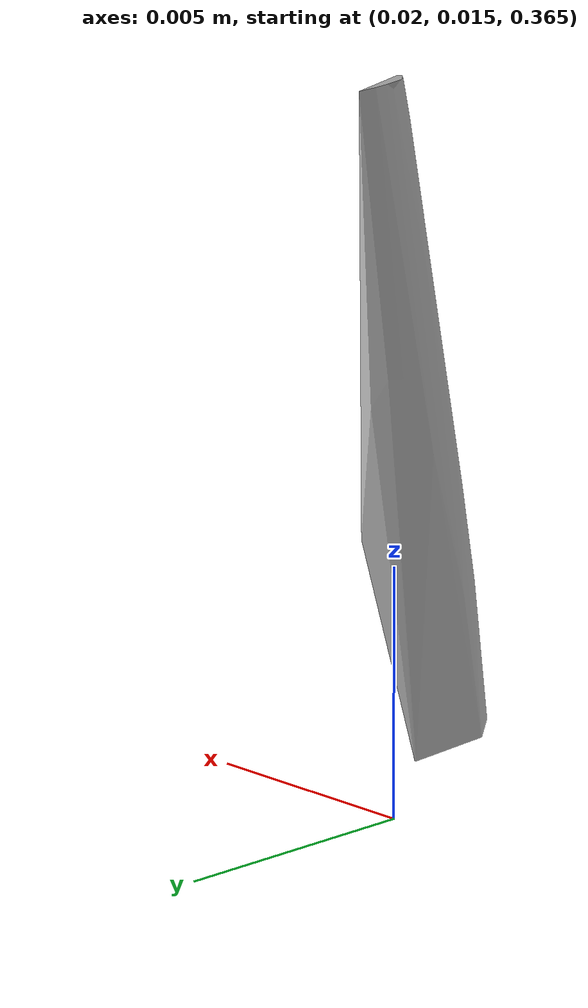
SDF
<?xml version="1.0"?>
<sdf version="1.7">
  <model name="vascular_partexport001">
    <link name="vascular_partexport001_body">
      <visual name="vascular_partexport001_visual">
        <geometry>
          <mesh>
            <uri>vascular_partexport001.obj</uri>
          </mesh>
        </geometry>
      </visual>
      <collision name="vascular_partexport001_collision">
        <geometry>
          <mesh>
            <uri>vascular_partexport001.obj</uri>
          </mesh>
        </geometry>
      </collision>
    </link>
    <frame name="vascular_partexport001_center">
      <pose relative_to="vascular_partexport001_body">0 0 0 0 0 0</pose>
    </frame>
  </model>
</sdf>
